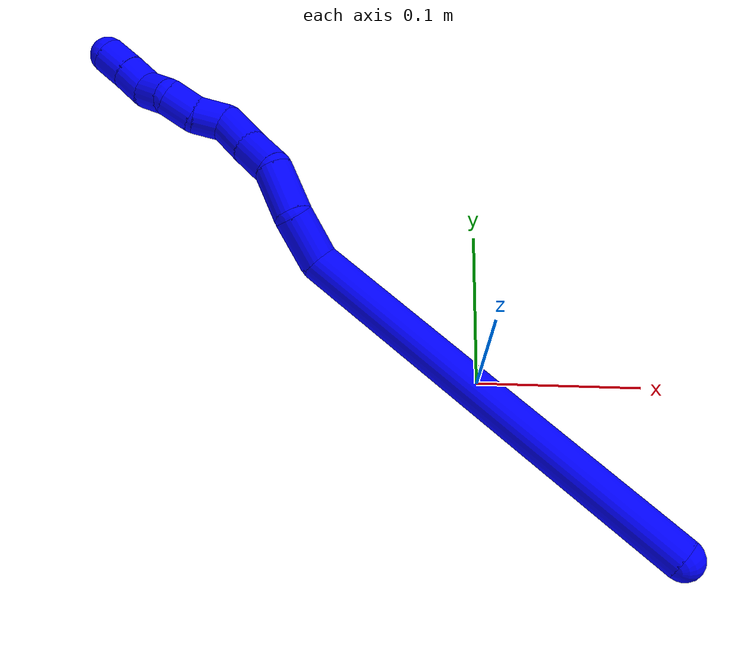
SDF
<sdf version="1.7">
 <world name="default">
  <plugin name="TubeGeneratorPlugin" filename="libtube_generator_plugin.so"/>
  <model name="photoneo_s_sensor">
   <static>1</static>
   <pose>0 0 2 1.57079 1.57079 3.14159</pose>
   <link name="link">
    <inertial><mass>0.1</mass></inertial>
    <sensor name="sensor" type="depth">
     <update_rate>30</update_rate>
     <camera>
      <horizontal_fov>1.22</horizontal_fov>
      <image><width>1920</width><height>1200</height><format>B8G8R8</format></image>
      <clip><near>0.1</near><far>4</far></clip>
      <depth_camera><output>points</output></depth_camera>
     </camera>
     <plugin name="camera_plugin" filename="libgazebo_ros_depth_camera.so">
      <baseline>0.2</baseline>
      <alwaysOn>1</alwaysOn>
      <updateRate>0.0</updateRate>
      <cameraName>camera_ir</cameraName>
      <imageTopicName>/camera/color/image_raw</imageTopicName>
      <cameraInfoTopicName>/camera/color/camera_info</cameraInfoTopicName>
      <depthImageTopicName>/camera/depth/image_raw</depthImageTopicName>
      <depthImageCameraInfoTopicName>/camera/depth/camera_info</depthImageCameraInfoTopicName>
      <pointCloudTopicName>/camera/depth/points</pointCloudTopicName>
      <frameName>fr_optical</frameName>
      <pointCloudCutoff>0.1</pointCloudCutoff>
      <pointCloudCutoffMax>2.0</pointCloudCutoffMax>
      <distortionK1>0</distortionK1>
      <distortionK2>0</distortionK2>
      <distortionK3>0</distortionK3>
      <distortionT1>0</distortionT1>
      <distortionT2>0</distortionT2>
      <CxPrime>0</CxPrime>
      <Cx>0</Cx>
      <Cy>0</Cy>
      <focalLength>0</focalLength>
      <hackBaseline>0</hackBaseline>
     </plugin>
    </sensor>
   </link>
  </model>
  <gravity>0 0 -9.8</gravity>
  <magnetic_field>6e-06 2.3e-05 -4.2e-05</magnetic_field>
  <atmosphere type="adiabatic"/>
  <physics name="default_physics" default="0" type="ode">
   <max_step_size>0.003</max_step_size>
   <real_time_factor>1</real_time_factor>
   <real_time_update_rate>1000</real_time_update_rate>
   <max_contacts>10000</max_contacts>
   <ode>
    <solver>
     <type>quick</type>
     <iters>100</iters>
     <sor>1.3</sor>
     <use_dynamic_moi_rescaling>0</use_dynamic_moi_rescaling>
    </solver>
    <constraints>
     <contact_max_correcting_vel>0</contact_max_correcting_vel>
     <contact_surface_layer>0.001</contact_surface_layer>
     <cfm>0</cfm>
     <erp>0.2</erp>
    </constraints>
   </ode>
  </physics>
  <scene><ambient>0.4 0.4 0.4 1</ambient><background>0.7 0.7 0.7 1</background><shadows>0</shadows></scene>
  <audio><device>default</device></audio>
  <spherical_coordinates>
   <surface_model>EARTH_WGS84</surface_model>
   <latitude_deg>0</latitude_deg>
   <longitude_deg>0</longitude_deg>
   <elevation>0</elevation>
   <heading_deg>0</heading_deg>
  </spherical_coordinates>
  <model name="bin">
   <static>1</static>
   <link name="bottom">
    <collision name="collision-bottom">
     <pose>0 0 -0.01 0 -0 0</pose>
     <geometry><box><size>0.8 0.6 0.02</size></box></geometry>
     <surface>
      <friction><ode><mu>100</mu><mu2>100</mu2></ode></friction>
      <contact><collide_bitmask>65535</collide_bitmask></contact>
     </surface>
    </collision>
   </link>
   <link name="west_wall">
    <collision name="collision-west_wall">
     <pose>-0.41 0 0.1 0 -0 0</pose>
     <geometry><box><size>0.02 0.6 0.2</size></box></geometry>
     <surface>
      <friction><ode><mu>100</mu><mu2>100</mu2></ode></friction>
      <contact><collide_bitmask>65535</collide_bitmask></contact>
     </surface>
    </collision>
   </link>
   <link name="east_wall">
    <collision name="collision-east_wall">
     <pose>0.41 0 0.1 0 -0 0</pose>
     <geometry><box><size>0.02 0.6 0.2</size></box></geometry>
     <surface>
      <friction><ode><mu>100</mu><mu2>100</mu2></ode></friction>
      <contact><collide_bitmask>65535</collide_bitmask></contact>
     </surface>
    </collision>
   </link>
   <link name="south_wall">
    <collision name="collision-south_wall">
     <pose>0 -0.31 0.1 0 -0 0</pose>
     <geometry><box><size>0.8 0.02 0.2</size></box></geometry>
     <surface>
      <friction><ode><mu>100</mu><mu2>100</mu2></ode></friction>
      <contact><collide_bitmask>65535</collide_bitmask></contact>
     </surface>
    </collision>
   </link>
   <link name="north_wall">
    <collision name="collision-north_wall">
     <pose>0 0.31 0.1 0 -0 0</pose>
     <geometry><box><size>0.8 0.02 0.2</size></box></geometry>
     <surface>
      <friction><ode><mu>100</mu><mu2>100</mu2></ode></friction>
      <contact><collide_bitmask>65535</collide_bitmask></contact>
     </surface>
    </collision>
   </link>
  </model>
  <model name="1">
   <static>0</static>
   <link name="1">
    <collision name="collision-cylinder-e_1_1_4">
     <pose>-0.103425 0.090625 0.000609 -1.56408 -0.851255 0.846215</pose>
     <geometry><cylinder><radius>0.0125</radius><length>0.275028</length></cylinder></geometry>
     <surface>
      <friction><ode><mu>1.16</mu><mu2>1.16</mu2><slip1>0</slip1><slip2>0</slip2></ode></friction>
      <contact><ode><kp>1e+06</kp><kd>1</kd><max_vel>0</max_vel><min_depth>0.001</min_depth></ode></contact>
     </surface>
    </collision>
    <visual name="visual-cylinder-e_1_1_4">
     <pose>-0.103425 0.090625 0.000609 -1.56408 -0.851255 0.846215</pose>
     <geometry><cylinder><radius>0.0125</radius><length>0.275028</length></cylinder></geometry>
     <material><ambient>0 0 1 1</ambient></material>
    </visual>
    <collision name="collision-cylinder-e_2_4_5">
     <pose>-0.21097 0.197336 0.002962 -1.46277 -0.249327 0.223975</pose>
     <geometry><cylinder><radius>0.0125</radius><length>0.033392</length></cylinder></geometry>
     <surface>
      <friction><ode><mu>1.16</mu><mu2>1.16</mu2><slip1>0</slip1><slip2>0</slip2></ode></friction>
      <contact><ode><kp>1e+06</kp><kd>1</kd><max_vel>0</max_vel><min_depth>0.001</min_depth></ode></contact>
     </surface>
    </collision>
    <visual name="visual-cylinder-e_2_4_5">
     <pose>-0.21097 0.197336 0.002962 -1.46277 -0.249327 0.223975</pose>
     <geometry><cylinder><radius>0.0125</radius><length>0.033392</length></cylinder></geometry>
     <material><ambient>0 0 1 1</ambient></material>
    </visual>
    <collision name="collision-cylinder-e_3_5_6">
     <pose>-0.222849 0.227803 -4.4e-05 -1.88981 -0.473447 0.644248</pose>
     <geometry><cylinder><radius>0.0125</radius><length>0.034035</length></cylinder></geometry>
     <surface>
      <friction><ode><mu>1.16</mu><mu2>1.16</mu2><slip1>0</slip1><slip2>0</slip2></ode></friction>
      <contact><ode><kp>1e+06</kp><kd>1</kd><max_vel>0</max_vel><min_depth>0.001</min_depth></ode></contact>
     </surface>
    </collision>
    <visual name="visual-cylinder-e_3_5_6">
     <pose>-0.222849 0.227803 -4.4e-05 -1.88981 -0.473447 0.644248</pose>
     <geometry><cylinder><radius>0.0125</radius><length>0.034035</length></cylinder></geometry>
     <material><ambient>0 0 1 1</ambient></material>
    </visual>
    <collision name="collision-cylinder-e_4_6_7">
     <pose>-0.24145 0.249276 -0.008332 -2.03354 -0.939546 1.37437</pose>
     <geometry><cylinder><radius>0.0125</radius><length>0.026859</length></cylinder></geometry>
     <surface>
      <friction><ode><mu>1.16</mu><mu2>1.16</mu2><slip1>0</slip1><slip2>0</slip2></ode></friction>
      <contact><ode><kp>1e+06</kp><kd>1</kd><max_vel>0</max_vel><min_depth>0.001</min_depth></ode></contact>
     </surface>
    </collision>
    <visual name="visual-cylinder-e_4_6_7">
     <pose>-0.24145 0.249276 -0.008332 -2.03354 -0.939546 1.37437</pose>
     <geometry><cylinder><radius>0.0125</radius><length>0.026859</length></cylinder></geometry>
     <material><ambient>0 0 1 1</ambient></material>
    </visual>
    <collision name="collision-cylinder-e_5_7_8">
     <pose>-0.262921 0.265206 -0.014744 -1.88523 -0.852351 1.11728</pose>
     <geometry><cylinder><radius>0.0125</radius><length>0.02824</length></cylinder></geometry>
     <surface>
      <friction><ode><mu>1.16</mu><mu2>1.16</mu2><slip1>0</slip1><slip2>0</slip2></ode></friction>
      <contact><ode><kp>1e+06</kp><kd>1</kd><max_vel>0</max_vel><min_depth>0.001</min_depth></ode></contact>
     </surface>
    </collision>
    <visual name="visual-cylinder-e_5_7_8">
     <pose>-0.262921 0.265206 -0.014744 -1.88523 -0.852351 1.11728</pose>
     <geometry><cylinder><radius>0.0125</radius><length>0.02824</length></cylinder></geometry>
     <material><ambient>0 0 1 1</ambient></material>
    </visual>
    <collision name="collision-cylinder-e_6_8_9">
     <pose>-0.281026 0.278977 -0.01219 -0.737591 -0.794824 0.321643</pose>
     <geometry><cylinder><radius>0.0125</radius><length>0.020947</length></cylinder></geometry>
     <surface>
      <friction><ode><mu>1.16</mu><mu2>1.16</mu2><slip1>0</slip1><slip2>0</slip2></ode></friction>
      <contact><ode><kp>1e+06</kp><kd>1</kd><max_vel>0</max_vel><min_depth>0.001</min_depth></ode></contact>
     </surface>
    </collision>
    <visual name="visual-cylinder-e_6_8_9">
     <pose>-0.281026 0.278977 -0.01219 -0.737591 -0.794824 0.321643</pose>
     <geometry><cylinder><radius>0.0125</radius><length>0.020947</length></cylinder></geometry>
     <material><ambient>0 0 1 1</ambient></material>
    </visual>
    <collision name="collision-cylinder-e_7_9_10">
     <pose>-0.295406 0.291485 -0.003644 -1.18044 -0.700413 0.479931</pose>
     <geometry><cylinder><radius>0.0125</radius><length>0.021424</length></cylinder></geometry>
     <surface>
      <friction><ode><mu>1.16</mu><mu2>1.16</mu2><slip1>0</slip1><slip2>0</slip2></ode></friction>
      <contact><ode><kp>1e+06</kp><kd>1</kd><max_vel>0</max_vel><min_depth>0.001</min_depth></ode></contact>
     </surface>
    </collision>
    <visual name="visual-cylinder-e_7_9_10">
     <pose>-0.295406 0.291485 -0.003644 -1.18044 -0.700413 0.479931</pose>
     <geometry><cylinder><radius>0.0125</radius><length>0.021424</length></cylinder></geometry>
     <material><ambient>0 0 1 1</ambient></material>
    </visual>
    <collision name="collision-cylinder-e_8_10_11">
     <pose>-0.311696 0.302443 -0.001263 -1.78487 -1.21736 1.426</pose>
     <geometry><cylinder><radius>0.0125</radius><length>0.02001</length></cylinder></geometry>
     <surface>
      <friction><ode><mu>1.16</mu><mu2>1.16</mu2><slip1>0</slip1><slip2>0</slip2></ode></friction>
      <contact><ode><kp>1e+06</kp><kd>1</kd><max_vel>0</max_vel><min_depth>0.001</min_depth></ode></contact>
     </surface>
    </collision>
    <visual name="visual-cylinder-e_8_10_11">
     <pose>-0.311696 0.302443 -0.001263 -1.78487 -1.21736 1.426</pose>
     <geometry><cylinder><radius>0.0125</radius><length>0.02001</length></cylinder></geometry>
     <material><ambient>0 0 1 1</ambient></material>
    </visual>
    <collision name="collision-cylinder-e_9_11_12">
     <pose>-0.328126 0.312938 -0.002056 -1.57884 -0.780587 0.786263</pose>
     <geometry><cylinder><radius>0.0125</radius><length>0.020019</length></cylinder></geometry>
     <surface>
      <friction><ode><mu>1.16</mu><mu2>1.16</mu2><slip1>0</slip1><slip2>0</slip2></ode></friction>
      <contact><ode><kp>1e+06</kp><kd>1</kd><max_vel>0</max_vel><min_depth>0.001</min_depth></ode></contact>
     </surface>
    </collision>
    <visual name="visual-cylinder-e_9_11_12">
     <pose>-0.328126 0.312938 -0.002056 -1.57884 -0.780587 0.786263</pose>
     <geometry><cylinder><radius>0.0125</radius><length>0.020019</length></cylinder></geometry>
     <material><ambient>0 0 1 1</ambient></material>
    </visual>
    <collision name="collision-cylinder-e_10_12_2">
     <pose>-0.342442 0.326946 -0.001909 -1.54116 -0.811648 0.790366</pose>
     <geometry><cylinder><radius>0.0125</radius><length>0.020048</length></cylinder></geometry>
     <surface>
      <friction><ode><mu>1.16</mu><mu2>1.16</mu2><slip1>0</slip1><slip2>0</slip2></ode></friction>
      <contact><ode><kp>1e+06</kp><kd>1</kd><max_vel>0</max_vel><min_depth>0.001</min_depth></ode></contact>
     </surface>
    </collision>
    <visual name="visual-cylinder-e_10_12_2">
     <pose>-0.342442 0.326946 -0.001909 -1.54116 -0.811648 0.790366</pose>
     <geometry><cylinder><radius>0.0125</radius><length>0.020048</length></cylinder></geometry>
     <material><ambient>0 0 1 1</ambient></material>
    </visual>
    <collision name="collision-sphere-2">
     <pose>-0.349713 0.333842 -0.001704 0 -0 0</pose>
     <geometry><sphere><radius>0.0125</radius></sphere></geometry>
     <surface>
      <friction><ode><mu>1.16</mu><mu2>1.16</mu2><slip1>0</slip1><slip2>0</slip2></ode></friction>
      <contact><ode><kp>1e+06</kp><kd>1</kd><max_vel>0</max_vel><min_depth>0.001</min_depth></ode></contact>
     </surface>
    </collision>
    <visual name="visual-sphere-2">
     <pose>-0.349713 0.333842 -0.001704 0 -0 0</pose>
     <geometry><sphere><radius>0.0125</radius></sphere></geometry>
     <material><ambient>0 0 1 1</ambient></material>
    </visual>
    <collision name="collision-sphere-12">
     <pose>-0.33517 0.320049 -0.002113 0 -0 0</pose>
     <geometry><sphere><radius>0.0125</radius></sphere></geometry>
     <surface>
      <friction><ode><mu>1.16</mu><mu2>1.16</mu2><slip1>0</slip1><slip2>0</slip2></ode></friction>
      <contact><ode><kp>1e+06</kp><kd>1</kd><max_vel>0</max_vel><min_depth>0.001</min_depth></ode></contact>
     </surface>
    </collision>
    <visual name="visual-sphere-12">
     <pose>-0.33517 0.320049 -0.002113 0 -0 0</pose>
     <geometry><sphere><radius>0.0125</radius></sphere></geometry>
     <material><ambient>0 0 1 1</ambient></material>
    </visual>
    <collision name="collision-sphere-11">
     <pose>-0.321083 0.305826 -0.001999 0 -0 0</pose>
     <geometry><sphere><radius>0.0125</radius></sphere></geometry>
     <surface>
      <friction><ode><mu>1.16</mu><mu2>1.16</mu2><slip1>0</slip1><slip2>0</slip2></ode></friction>
      <contact><ode><kp>1e+06</kp><kd>1</kd><max_vel>0</max_vel><min_depth>0.001</min_depth></ode></contact>
     </surface>
    </collision>
    <visual name="visual-sphere-11">
     <pose>-0.321083 0.305826 -0.001999 0 -0 0</pose>
     <geometry><sphere><radius>0.0125</radius></sphere></geometry>
     <material><ambient>0 0 1 1</ambient></material>
    </visual>
    <collision name="collision-sphere-10">
     <pose>-0.30231 0.299059 -0.000528 0 -0 0</pose>
     <geometry><sphere><radius>0.0125</radius></sphere></geometry>
     <surface>
      <friction><ode><mu>1.16</mu><mu2>1.16</mu2><slip1>0</slip1><slip2>0</slip2></ode></friction>
      <contact><ode><kp>1e+06</kp><kd>1</kd><max_vel>0</max_vel><min_depth>0.001</min_depth></ode></contact>
     </surface>
    </collision>
    <visual name="visual-sphere-10">
     <pose>-0.30231 0.299059 -0.000528 0 -0 0</pose>
     <geometry><sphere><radius>0.0125</radius></sphere></geometry>
     <material><ambient>0 0 1 1</ambient></material>
    </visual>
    <collision name="collision-sphere-9">
     <pose>-0.288502 0.283911 -0.006761 0 -0 0</pose>
     <geometry><sphere><radius>0.0125</radius></sphere></geometry>
     <surface>
      <friction><ode><mu>1.16</mu><mu2>1.16</mu2><slip1>0</slip1><slip2>0</slip2></ode></friction>
      <contact><ode><kp>1e+06</kp><kd>1</kd><max_vel>0</max_vel><min_depth>0.001</min_depth></ode></contact>
     </surface>
    </collision>
    <visual name="visual-sphere-9">
     <pose>-0.288502 0.283911 -0.006761 0 -0 0</pose>
     <geometry><sphere><radius>0.0125</radius></sphere></geometry>
     <material><ambient>0 0 1 1</ambient></material>
    </visual>
    <collision name="collision-sphere-4">
     <pose>-0.206851 0.18125 0.001217 0 -0 0</pose>
     <geometry><sphere><radius>0.0125</radius></sphere></geometry>
     <surface>
      <friction><ode><mu>1.16</mu><mu2>1.16</mu2><slip1>0</slip1><slip2>0</slip2></ode></friction>
      <contact><ode><kp>1e+06</kp><kd>1</kd><max_vel>0</max_vel><min_depth>0.001</min_depth></ode></contact>
     </surface>
    </collision>
    <visual name="visual-sphere-4">
     <pose>-0.206851 0.18125 0.001217 0 -0 0</pose>
     <geometry><sphere><radius>0.0125</radius></sphere></geometry>
     <material><ambient>0 0 1 1</ambient></material>
    </visual>
    <collision name="collision-sphere-1">
     <geometry><sphere><radius>0.0125</radius></sphere></geometry>
     <surface>
      <friction><ode><mu>1.16</mu><mu2>1.16</mu2><slip1>0</slip1><slip2>0</slip2></ode></friction>
      <contact><ode><kp>1e+06</kp><kd>1</kd><max_vel>0</max_vel><min_depth>0.001</min_depth></ode></contact>
     </surface>
    </collision>
    <visual name="visual-sphere-1">
     <geometry><sphere><radius>0.0125</radius></sphere></geometry>
     <material><ambient>0 0 1 1</ambient></material>
    </visual>
    <collision name="collision-sphere-8">
     <pose>-0.273551 0.274044 -0.017619 0 -0 0</pose>
     <geometry><sphere><radius>0.0125</radius></sphere></geometry>
     <surface>
      <friction><ode><mu>1.16</mu><mu2>1.16</mu2><slip1>0</slip1><slip2>0</slip2></ode></friction>
      <contact><ode><kp>1e+06</kp><kd>1</kd><max_vel>0</max_vel><min_depth>0.001</min_depth></ode></contact>
     </surface>
    </collision>
    <visual name="visual-sphere-8">
     <pose>-0.273551 0.274044 -0.017619 0 -0 0</pose>
     <geometry><sphere><radius>0.0125</radius></sphere></geometry>
     <material><ambient>0 0 1 1</ambient></material>
    </visual>
    <collision name="collision-sphere-5">
     <pose>-0.21509 0.213421 0.004706 0 -0 0</pose>
     <geometry><sphere><radius>0.0125</radius></sphere></geometry>
     <surface>
      <friction><ode><mu>1.16</mu><mu2>1.16</mu2><slip1>0</slip1><slip2>0</slip2></ode></friction>
      <contact><ode><kp>1e+06</kp><kd>1</kd><max_vel>0</max_vel><min_depth>0.001</min_depth></ode></contact>
     </surface>
    </collision>
    <visual name="visual-sphere-5">
     <pose>-0.21509 0.213421 0.004706 0 -0 0</pose>
     <geometry><sphere><radius>0.0125</radius></sphere></geometry>
     <material><ambient>0 0 1 1</ambient></material>
    </visual>
    <collision name="collision-sphere-6">
     <pose>-0.230609 0.242184 -0.004794 0 -0 0</pose>
     <geometry><sphere><radius>0.0125</radius></sphere></geometry>
     <surface>
      <friction><ode><mu>1.16</mu><mu2>1.16</mu2><slip1>0</slip1><slip2>0</slip2></ode></friction>
      <contact><ode><kp>1e+06</kp><kd>1</kd><max_vel>0</max_vel><min_depth>0.001</min_depth></ode></contact>
     </surface>
    </collision>
    <visual name="visual-sphere-6">
     <pose>-0.230609 0.242184 -0.004794 0 -0 0</pose>
     <geometry><sphere><radius>0.0125</radius></sphere></geometry>
     <material><ambient>0 0 1 1</ambient></material>
    </visual>
    <collision name="collision-sphere-7">
     <pose>-0.252291 0.256368 -0.01187 0 -0 0</pose>
     <geometry><sphere><radius>0.0125</radius></sphere></geometry>
     <surface>
      <friction><ode><mu>1.16</mu><mu2>1.16</mu2><slip1>0</slip1><slip2>0</slip2></ode></friction>
      <contact><ode><kp>1e+06</kp><kd>1</kd><max_vel>0</max_vel><min_depth>0.001</min_depth></ode></contact>
     </surface>
    </collision>
    <visual name="visual-sphere-7">
     <pose>-0.252291 0.256368 -0.01187 0 -0 0</pose>
     <geometry><sphere><radius>0.0125</radius></sphere></geometry>
     <material><ambient>0 0 1 1</ambient></material>
    </visual>
    <inertial>
     <pose>-0.17774 0.168822 -0.001627 0 -0 0</pose>
     <mass>0.5</mass>
     <inertia>
      <ixx>0.001617</ixx>
      <ixy>0</ixy>
      <ixz>0</ixz>
      <iyy>0.001896</iyy>
      <iyz>0</iyz>
      <izz>0.00016</izz>
     </inertia>
    </inertial>
   </link>
   <pose>0.110972 -0.103529 0.012499 0.891133 -0.601332 -0.278633</pose>
  </model>
 </world>
</sdf>
